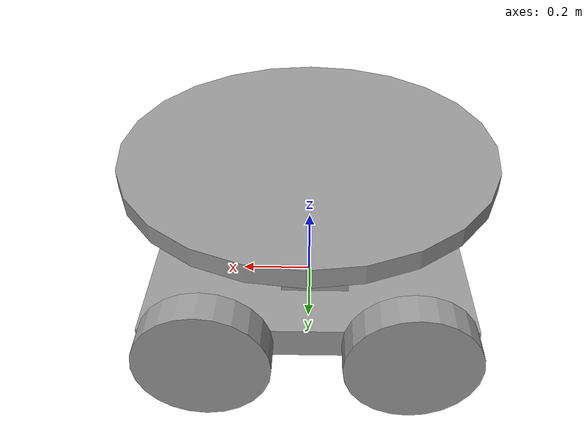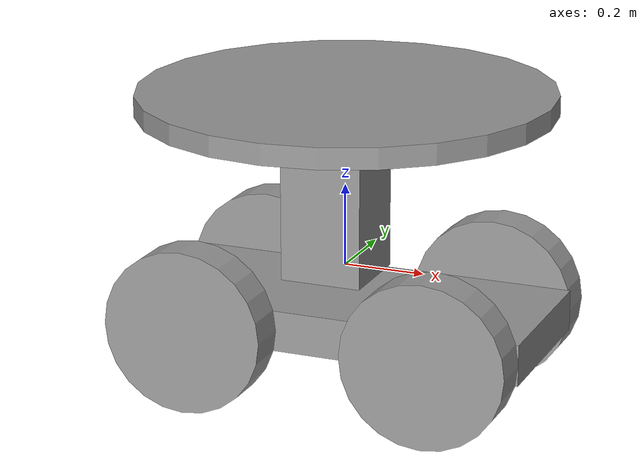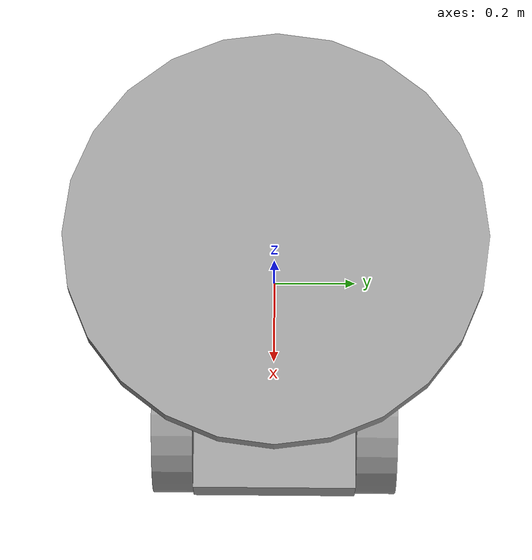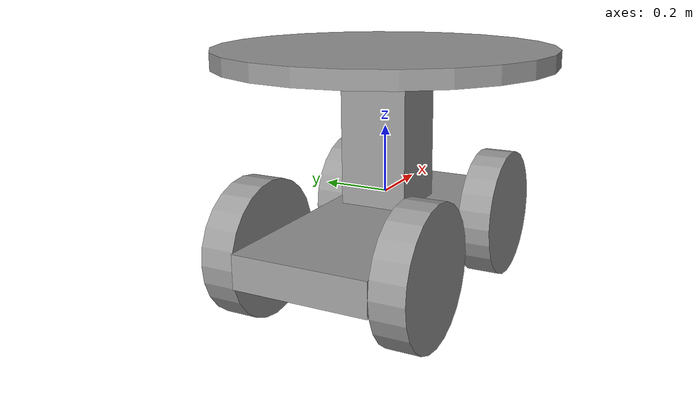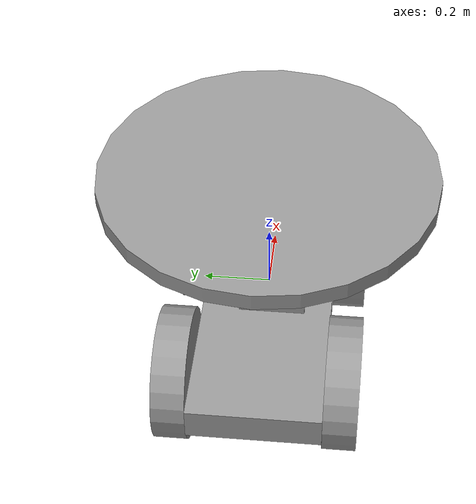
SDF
<?xml version='1.0'?>
<sdf version='1.6'>
  <model name='robot'>
    <link name='link_0'>
      <pose frame=''>0.002857 0.002857 -0.117857 0 -0 0</pose>
      <inertial>
        <mass>1</mass>
        <inertia>
          <ixx>0.166667</ixx>
          <ixy>0</ixy>
          <ixz>0</ixz>
          <iyy>0.166667</iyy>
          <iyz>0</iyz>
          <izz>0.166667</izz>
        </inertia>
        <pose frame=''>0 0 0 0 -0 0</pose>
      </inertial>
      <gravity>1</gravity>
      <self_collide>0</self_collide>
      <kinematic>0</kinematic>
      <visual name='visual'>
        <pose frame=''>0 0 0 0 -0 0</pose>
        <geometry>
          <box>
            <size>1 0.4 0.1</size>
          </box>
        </geometry>
        <material>
          <lighting>1</lighting>
          <script>
            <uri>file://media/materials/scripts/gazebo.material</uri>
            <name>Gazebo/Grey</name>
          </script>
          <ambient>0.3 0.3 0.3 1</ambient>
          <diffuse>0.7 0.7 0.7 1</diffuse>
          <specular>0.01 0.01 0.01 1</specular>
          <emissive>0 0 0 1</emissive>
          <shader type='vertex'>
            <normal_map>__default__</normal_map>
          </shader>
        </material>
        <transparency>0</transparency>
        <cast_shadows>1</cast_shadows>
      </visual>
      <collision name='collision'>
        <laser_retro>0</laser_retro>
        <max_contacts>10</max_contacts>
        <pose frame=''>0 0 0 0 -0 0</pose>
        <geometry>
          <box>
            <size>1 0.4 0.1</size>
          </box>
        </geometry>
        <surface>
          <friction>
            <ode>
              <mu>1</mu>
              <mu2>1</mu2>
              <fdir1>0 0 0</fdir1>
              <slip1>0</slip1>
              <slip2>0</slip2>
            </ode>
            <torsional>
              <coefficient>1</coefficient>
              <patch_radius>0</patch_radius>
              <surface_radius>0</surface_radius>
              <use_patch_radius>1</use_patch_radius>
              <ode>
                <slip>0</slip>
              </ode>
            </torsional>
          </friction>
          <bounce>
            <restitution_coefficient>0</restitution_coefficient>
            <threshold>1e+06</threshold>
          </bounce>
          <contact>
            <collide_without_contact>0</collide_without_contact>
            <collide_without_contact_bitmask>1</collide_without_contact_bitmask>
            <collide_bitmask>1</collide_bitmask>
            <ode>
              <soft_cfm>0</soft_cfm>
              <soft_erp>0.2</soft_erp>
              <kp>1e+13</kp>
              <kd>1</kd>
              <max_vel>0.01</max_vel>
              <min_depth>0</min_depth>
            </ode>
            <bullet>
              <split_impulse>1</split_impulse>
              <split_impulse_penetration_threshold>-0.01</split_impulse_penetration_threshold>
              <soft_cfm>0</soft_cfm>
              <soft_erp>0.2</soft_erp>
              <kp>1e+13</kp>
              <kd>1</kd>
            </bullet>
          </contact>
        </surface>
      </collision>
    </link>
    <link name='link_1'>
      <pose frame=''>-0.297143 -0.247162 -0.117857 1.5707 -0 0</pose>
      <inertial>
        <mass>1</mass>
        <inertia>
          <ixx>0.145833</ixx>
          <ixy>0</ixy>
          <ixz>0</ixz>
          <iyy>0.145833</iyy>
          <iyz>0</iyz>
          <izz>0.125</izz>
        </inertia>
        <pose frame=''>0 0 0 0 -0 0</pose>
      </inertial>
      <gravity>1</gravity>
      <self_collide>0</self_collide>
      <kinematic>0</kinematic>
      <visual name='visual'>
        <pose frame=''>0 0 0 0 -0 0</pose>
        <geometry>
          <cylinder>
            <radius>0.2</radius>
            <length>0.1</length>
          </cylinder>
        </geometry>
        <material>
          <lighting>1</lighting>
          <script>
            <uri>file://media/materials/scripts/gazebo.material</uri>
            <name>Gazebo/Grey</name>
          </script>
          <ambient>0.3 0.3 0.3 1</ambient>
          <diffuse>0.7 0.7 0.7 1</diffuse>
          <specular>0.01 0.01 0.01 1</specular>
          <emissive>0 0 0 1</emissive>
          <shader type='vertex'>
            <normal_map>__default__</normal_map>
          </shader>
        </material>
        <transparency>0</transparency>
        <cast_shadows>1</cast_shadows>
      </visual>
      <collision name='collision'>
        <laser_retro>0</laser_retro>
        <max_contacts>10</max_contacts>
        <pose frame=''>0 0 0 0 -0 0</pose>
        <geometry>
          <cylinder>
            <radius>0.2</radius>
            <length>0.1</length>
          </cylinder>
        </geometry>
        <surface>
          <friction>
            <ode>
              <mu>1</mu>
              <mu2>1</mu2>
              <fdir1>0 0 0</fdir1>
              <slip1>0</slip1>
              <slip2>0</slip2>
            </ode>
            <torsional>
              <coefficient>1</coefficient>
              <patch_radius>0</patch_radius>
              <surface_radius>0</surface_radius>
              <use_patch_radius>1</use_patch_radius>
              <ode>
                <slip>0</slip>
              </ode>
            </torsional>
          </friction>
          <bounce>
            <restitution_coefficient>0</restitution_coefficient>
            <threshold>1e+06</threshold>
          </bounce>
          <contact>
            <collide_without_contact>0</collide_without_contact>
            <collide_without_contact_bitmask>1</collide_without_contact_bitmask>
            <collide_bitmask>1</collide_bitmask>
            <ode>
              <soft_cfm>0</soft_cfm>
              <soft_erp>0.2</soft_erp>
              <kp>1e+13</kp>
              <kd>1</kd>
              <max_vel>0.01</max_vel>
              <min_depth>0</min_depth>
            </ode>
            <bullet>
              <split_impulse>1</split_impulse>
              <split_impulse_penetration_threshold>-0.01</split_impulse_penetration_threshold>
              <soft_cfm>0</soft_cfm>
              <soft_erp>0.2</soft_erp>
              <kp>1e+13</kp>
              <kd>1</kd>
            </bullet>
          </contact>
        </surface>
      </collision>
    </link>
    <link name='link_1_clone'>
      <pose frame=''>-0.297143 0.252876 -0.117857 1.5707 -0 0</pose>
      <inertial>
        <mass>1</mass>
        <inertia>
          <ixx>0.145833</ixx>
          <ixy>0</ixy>
          <ixz>0</ixz>
          <iyy>0.145833</iyy>
          <iyz>0</iyz>
          <izz>0.125</izz>
        </inertia>
        <pose frame=''>0 0 0 0 -0 0</pose>
      </inertial>
      <self_collide>0</self_collide>
      <kinematic>0</kinematic>
      <visual name='visual'>
        <pose frame=''>0 0 0 0 -0 0</pose>
        <geometry>
          <cylinder>
            <radius>0.2</radius>
            <length>0.1</length>
          </cylinder>
        </geometry>
        <material>
          <lighting>1</lighting>
          <script>
            <uri>file://media/materials/scripts/gazebo.material</uri>
            <name>Gazebo/Grey</name>
          </script>
          <ambient>0.3 0.3 0.3 1</ambient>
          <diffuse>0.7 0.7 0.7 1</diffuse>
          <specular>0.01 0.01 0.01 1</specular>
          <emissive>0 0 0 1</emissive>
          <shader type='vertex'>
            <normal_map>__default__</normal_map>
          </shader>
        </material>
        <transparency>0</transparency>
        <cast_shadows>1</cast_shadows>
      </visual>
      <collision name='collision'>
        <laser_retro>0</laser_retro>
        <max_contacts>10</max_contacts>
        <pose frame=''>0 0 0 0 -0 0</pose>
        <geometry>
          <cylinder>
            <radius>0.2</radius>
            <length>0.1</length>
          </cylinder>
        </geometry>
        <surface>
          <friction>
            <ode>
              <mu>1</mu>
              <mu2>1</mu2>
              <fdir1>0 0 0</fdir1>
              <slip1>0</slip1>
              <slip2>0</slip2>
            </ode>
            <torsional>
              <coefficient>1</coefficient>
              <patch_radius>0</patch_radius>
              <surface_radius>0</surface_radius>
              <use_patch_radius>1</use_patch_radius>
              <ode>
                <slip>0</slip>
              </ode>
            </torsional>
          </friction>
          <bounce>
            <restitution_coefficient>0</restitution_coefficient>
            <threshold>1e+06</threshold>
          </bounce>
          <contact>
            <collide_without_contact>0</collide_without_contact>
            <collide_without_contact_bitmask>1</collide_without_contact_bitmask>
            <collide_bitmask>1</collide_bitmask>
            <ode>
              <soft_cfm>0</soft_cfm>
              <soft_erp>0.2</soft_erp>
              <kp>1e+13</kp>
              <kd>1</kd>
              <max_vel>0.01</max_vel>
              <min_depth>0</min_depth>
            </ode>
            <bullet>
              <split_impulse>1</split_impulse>
              <split_impulse_penetration_threshold>-0.01</split_impulse_penetration_threshold>
              <soft_cfm>0</soft_cfm>
              <soft_erp>0.2</soft_erp>
              <kp>1e+13</kp>
              <kd>1</kd>
            </bullet>
          </contact>
        </surface>
      </collision>
    </link>
    <link name='link_1_clone_0'>
      <pose frame=''>0.302857 -0.247162 -0.117857 1.5707 -0 0</pose>
      <inertial>
        <mass>1</mass>
        <inertia>
          <ixx>0.145833</ixx>
          <ixy>0</ixy>
          <ixz>0</ixz>
          <iyy>0.145833</iyy>
          <iyz>0</iyz>
          <izz>0.125</izz>
        </inertia>
        <pose frame=''>0 0 0 0 -0 0</pose>
      </inertial>
      <self_collide>0</self_collide>
      <kinematic>0</kinematic>
      <visual name='visual'>
        <pose frame=''>0 0 0 0 -0 0</pose>
        <geometry>
          <cylinder>
            <radius>0.2</radius>
            <length>0.1</length>
          </cylinder>
        </geometry>
        <material>
          <lighting>1</lighting>
          <script>
            <uri>file://media/materials/scripts/gazebo.material</uri>
            <name>Gazebo/Grey</name>
          </script>
          <ambient>0.3 0.3 0.3 1</ambient>
          <diffuse>0.7 0.7 0.7 1</diffuse>
          <specular>0.01 0.01 0.01 1</specular>
          <emissive>0 0 0 1</emissive>
          <shader type='vertex'>
            <normal_map>__default__</normal_map>
          </shader>
        </material>
        <transparency>0</transparency>
        <cast_shadows>1</cast_shadows>
      </visual>
      <collision name='collision'>
        <laser_retro>0</laser_retro>
        <max_contacts>10</max_contacts>
        <pose frame=''>0 0 0 0 -0 0</pose>
        <geometry>
          <cylinder>
            <radius>0.2</radius>
            <length>0.1</length>
          </cylinder>
        </geometry>
        <surface>
          <friction>
            <ode>
              <mu>1</mu>
              <mu2>1</mu2>
              <fdir1>0 0 0</fdir1>
              <slip1>0</slip1>
              <slip2>0</slip2>
            </ode>
            <torsional>
              <coefficient>1</coefficient>
              <patch_radius>0</patch_radius>
              <surface_radius>0</surface_radius>
              <use_patch_radius>1</use_patch_radius>
              <ode>
                <slip>0</slip>
              </ode>
            </torsional>
          </friction>
          <bounce>
            <restitution_coefficient>0</restitution_coefficient>
            <threshold>1e+06</threshold>
          </bounce>
          <contact>
            <collide_without_contact>0</collide_without_contact>
            <collide_without_contact_bitmask>1</collide_without_contact_bitmask>
            <collide_bitmask>1</collide_bitmask>
            <ode>
              <soft_cfm>0</soft_cfm>
              <soft_erp>0.2</soft_erp>
              <kp>1e+13</kp>
              <kd>1</kd>
              <max_vel>0.01</max_vel>
              <min_depth>0</min_depth>
            </ode>
            <bullet>
              <split_impulse>1</split_impulse>
              <split_impulse_penetration_threshold>-0.01</split_impulse_penetration_threshold>
              <soft_cfm>0</soft_cfm>
              <soft_erp>0.2</soft_erp>
              <kp>1e+13</kp>
              <kd>1</kd>
            </bullet>
          </contact>
        </surface>
      </collision>
    </link>
    <link name='link_1_clone_1'>
      <pose frame=''>0.302857 0.252876 -0.117857 1.5707 -0 0</pose>
      <inertial>
        <mass>1</mass>
        <inertia>
          <ixx>0.145833</ixx>
          <ixy>0</ixy>
          <ixz>0</ixz>
          <iyy>0.145833</iyy>
          <iyz>0</iyz>
          <izz>0.125</izz>
        </inertia>
        <pose frame=''>0 0 0 0 -0 0</pose>
      </inertial>
      <self_collide>0</self_collide>
      <kinematic>0</kinematic>
      <visual name='visual'>
        <pose frame=''>0 0 0 0 -0 0</pose>
        <geometry>
          <cylinder>
            <radius>0.2</radius>
            <length>0.1</length>
          </cylinder>
        </geometry>
        <material>
          <lighting>1</lighting>
          <script>
            <uri>file://media/materials/scripts/gazebo.material</uri>
            <name>Gazebo/Grey</name>
          </script>
          <ambient>0.3 0.3 0.3 1</ambient>
          <diffuse>0.7 0.7 0.7 1</diffuse>
          <specular>0.01 0.01 0.01 1</specular>
          <emissive>0 0 0 1</emissive>
          <shader type='vertex'>
            <normal_map>__default__</normal_map>
          </shader>
        </material>
        <transparency>0</transparency>
        <cast_shadows>1</cast_shadows>
      </visual>
      <collision name='collision'>
        <laser_retro>0</laser_retro>
        <max_contacts>10</max_contacts>
        <pose frame=''>0 0 0 0 -0 0</pose>
        <geometry>
          <cylinder>
            <radius>0.2</radius>
            <length>0.1</length>
          </cylinder>
        </geometry>
        <surface>
          <friction>
            <ode>
              <mu>1</mu>
              <mu2>1</mu2>
              <fdir1>0 0 0</fdir1>
              <slip1>0</slip1>
              <slip2>0</slip2>
            </ode>
            <torsional>
              <coefficient>1</coefficient>
              <patch_radius>0</patch_radius>
              <surface_radius>0</surface_radius>
              <use_patch_radius>1</use_patch_radius>
              <ode>
                <slip>0</slip>
              </ode>
            </torsional>
          </friction>
          <bounce>
            <restitution_coefficient>0</restitution_coefficient>
            <threshold>1e+06</threshold>
          </bounce>
          <contact>
            <collide_without_contact>0</collide_without_contact>
            <collide_without_contact_bitmask>1</collide_without_contact_bitmask>
            <collide_bitmask>1</collide_bitmask>
            <ode>
              <soft_cfm>0</soft_cfm>
              <soft_erp>0.2</soft_erp>
              <kp>1e+13</kp>
              <kd>1</kd>
              <max_vel>0.01</max_vel>
              <min_depth>0</min_depth>
            </ode>
            <bullet>
              <split_impulse>1</split_impulse>
              <split_impulse_penetration_threshold>-0.01</split_impulse_penetration_threshold>
              <soft_cfm>0</soft_cfm>
              <soft_erp>0.2</soft_erp>
              <kp>1e+13</kp>
              <kd>1</kd>
            </bullet>
          </contact>
        </surface>
      </collision>
    </link>
    <link name='link_3'>
      <pose frame=''>-0.017143 -0.017143 0.182143 0 -0 0</pose>
      <inertial>
        <mass>1</mass>
        <inertia>
          <ixx>0.166667</ixx>
          <ixy>0</ixy>
          <ixz>0</ixz>
          <iyy>0.166667</iyy>
          <iyz>0</iyz>
          <izz>0.166667</izz>
        </inertia>
        <pose frame=''>0 0 0 0 -0 0</pose>
      </inertial>
      <gravity>1</gravity>
      <self_collide>0</self_collide>
      <kinematic>0</kinematic>
      <visual name='visual'>
        <pose frame=''>0 0 0 0 -0 0</pose>
        <geometry>
          <box>
            <size>0.2 0.2 0.4</size>
          </box>
        </geometry>
        <material>
          <lighting>1</lighting>
          <script>
            <uri>file://media/materials/scripts/gazebo.material</uri>
            <name>Gazebo/Grey</name>
          </script>
          <ambient>0.3 0.3 0.3 1</ambient>
          <diffuse>0.7 0.7 0.7 1</diffuse>
          <specular>0.01 0.01 0.01 1</specular>
          <emissive>0 0 0 1</emissive>
          <shader type='vertex'>
            <normal_map>__default__</normal_map>
          </shader>
        </material>
        <transparency>0</transparency>
        <cast_shadows>1</cast_shadows>
      </visual>
      <collision name='collision'>
        <laser_retro>0</laser_retro>
        <max_contacts>10</max_contacts>
        <pose frame=''>0 0 0 0 -0 0</pose>
        <geometry>
          <box>
            <size>0.2 0.2 0.4</size>
          </box>
        </geometry>
        <surface>
          <friction>
            <ode>
              <mu>1</mu>
              <mu2>1</mu2>
              <fdir1>0 0 0</fdir1>
              <slip1>0</slip1>
              <slip2>0</slip2>
            </ode>
            <torsional>
              <coefficient>1</coefficient>
              <patch_radius>0</patch_radius>
              <surface_radius>0</surface_radius>
              <use_patch_radius>1</use_patch_radius>
              <ode>
                <slip>0</slip>
              </ode>
            </torsional>
          </friction>
          <bounce>
            <restitution_coefficient>0</restitution_coefficient>
            <threshold>1e+06</threshold>
          </bounce>
          <contact>
            <collide_without_contact>0</collide_without_contact>
            <collide_without_contact_bitmask>1</collide_without_contact_bitmask>
            <collide_bitmask>1</collide_bitmask>
            <ode>
              <soft_cfm>0</soft_cfm>
              <soft_erp>0.2</soft_erp>
              <kp>1e+13</kp>
              <kd>1</kd>
              <max_vel>0.01</max_vel>
              <min_depth>0</min_depth>
            </ode>
            <bullet>
              <split_impulse>1</split_impulse>
              <split_impulse_penetration_threshold>-0.01</split_impulse_penetration_threshold>
              <soft_cfm>0</soft_cfm>
              <soft_erp>0.2</soft_erp>
              <kp>1e+13</kp>
              <kd>1</kd>
            </bullet>
          </contact>
        </surface>
      </collision>
    </link>
    <link name='link_4'>
      <pose frame=''>0.002857 0.002857 0.407143 0 -0 0</pose>
      <inertial>
        <mass>1</mass>
        <inertia>
          <ixx>0.145833</ixx>
          <ixy>0</ixy>
          <ixz>0</ixz>
          <iyy>0.145833</iyy>
          <iyz>0</iyz>
          <izz>0.125</izz>
        </inertia>
        <pose frame=''>0 0 0 0 -0 0</pose>
      </inertial>
      <gravity>1</gravity>
      <self_collide>0</self_collide>
      <kinematic>0</kinematic>
      <visual name='visual'>
        <pose frame=''>0 0 0 0 -0 0</pose>
        <geometry>
          <cylinder>
            <radius>0.5</radius>
            <length>0.05</length>
          </cylinder>
        </geometry>
        <material>
          <lighting>1</lighting>
          <script>
            <uri>file://media/materials/scripts/gazebo.material</uri>
            <name>Gazebo/Grey</name>
          </script>
          <ambient>0.3 0.3 0.3 1</ambient>
          <diffuse>0.7 0.7 0.7 1</diffuse>
          <specular>0.01 0.01 0.01 1</specular>
          <emissive>0 0 0 1</emissive>
          <shader type='vertex'>
            <normal_map>__default__</normal_map>
          </shader>
        </material>
        <transparency>0</transparency>
        <cast_shadows>1</cast_shadows>
      </visual>
      <collision name='collision'>
        <laser_retro>0</laser_retro>
        <max_contacts>10</max_contacts>
        <pose frame=''>0 0 0 0 -0 0</pose>
        <geometry>
          <cylinder>
            <radius>0.5</radius>
            <length>0.05</length>
          </cylinder>
        </geometry>
        <surface>
          <friction>
            <ode>
              <mu>1</mu>
              <mu2>1</mu2>
              <fdir1>0 0 0</fdir1>
              <slip1>0</slip1>
              <slip2>0</slip2>
            </ode>
            <torsional>
              <coefficient>1</coefficient>
              <patch_radius>0</patch_radius>
              <surface_radius>0</surface_radius>
              <use_patch_radius>1</use_patch_radius>
              <ode>
                <slip>0</slip>
              </ode>
            </torsional>
          </friction>
          <bounce>
            <restitution_coefficient>0</restitution_coefficient>
            <threshold>1e+06</threshold>
          </bounce>
          <contact>
            <collide_without_contact>0</collide_without_contact>
            <collide_without_contact_bitmask>1</collide_without_contact_bitmask>
            <collide_bitmask>1</collide_bitmask>
            <ode>
              <soft_cfm>0</soft_cfm>
              <soft_erp>0.2</soft_erp>
              <kp>1e+13</kp>
              <kd>1</kd>
              <max_vel>0.01</max_vel>
              <min_depth>0</min_depth>
            </ode>
            <bullet>
              <split_impulse>1</split_impulse>
              <split_impulse_penetration_threshold>-0.01</split_impulse_penetration_threshold>
              <soft_cfm>0</soft_cfm>
              <soft_erp>0.2</soft_erp>
              <kp>1e+13</kp>
              <kd>1</kd>
            </bullet>
          </contact>
        </surface>
      </collision>
    </link>
    <joint name='link_0_JOINT_2' type='revolute'>
      <parent>link_0</parent>
      <child>link_1</child>
      <pose frame=''>0 0 0 0 -0 0</pose>
      <axis>
        <xyz>0 0 1</xyz>
        <use_parent_model_frame>0</use_parent_model_frame>
        <limit>
          <lower>-1.79769e+308</lower>
          <upper>1.79769e+308</upper>
          <effort>-1</effort>
          <velocity>-1</velocity>
        </limit>
        <dynamics>
          <spring_reference>0</spring_reference>
          <spring_stiffness>0</spring_stiffness>
          <damping>0</damping>
        </dynamics>
      </axis>
      <physics>
        <ode>
          <limit>
            <cfm>0</cfm>
            <erp>0.2</erp>
          </limit>
          <suspension>
            <cfm>0</cfm>
            <erp>0.2</erp>
          </suspension>
        </ode>
      </physics>
    </joint>
    <joint name='link_0_JOINT_3' type='revolute'>
      <parent>link_0</parent>
      <child>link_1_clone</child>
      <pose frame=''>0 0 0 0 -0 0</pose>
      <axis>
        <xyz>0 0 1</xyz>
        <use_parent_model_frame>0</use_parent_model_frame>
        <limit>
          <lower>-1.79769e+308</lower>
          <upper>1.79769e+308</upper>
          <effort>-1</effort>
          <velocity>-1</velocity>
        </limit>
        <dynamics>
          <spring_reference>0</spring_reference>
          <spring_stiffness>0</spring_stiffness>
          <damping>0</damping>
        </dynamics>
      </axis>
      <physics>
        <ode>
          <limit>
            <cfm>0</cfm>
            <erp>0.2</erp>
          </limit>
          <suspension>
            <cfm>0</cfm>
            <erp>0.2</erp>
          </suspension>
        </ode>
      </physics>
    </joint>
    <joint name='link_0_JOINT_4' type='revolute'>
      <parent>link_0</parent>
      <child>link_1_clone_0</child>
      <pose frame=''>0 0 0 0 -0 0</pose>
      <axis>
        <xyz>0 0 1</xyz>
        <use_parent_model_frame>0</use_parent_model_frame>
        <limit>
          <lower>-1.79769e+308</lower>
          <upper>1.79769e+308</upper>
          <effort>-1</effort>
          <velocity>-1</velocity>
        </limit>
        <dynamics>
          <spring_reference>0</spring_reference>
          <spring_stiffness>0</spring_stiffness>
          <damping>0</damping>
        </dynamics>
      </axis>
      <physics>
        <ode>
          <limit>
            <cfm>0</cfm>
            <erp>0.2</erp>
          </limit>
          <suspension>
            <cfm>0</cfm>
            <erp>0.2</erp>
          </suspension>
        </ode>
      </physics>
    </joint>
    <joint name='link_0_JOINT_5' type='revolute'>
      <parent>link_0</parent>
      <child>link_1_clone_1</child>
      <pose frame=''>0 0 0 0 -0 0</pose>
      <axis>
        <xyz>0 0 1</xyz>
        <use_parent_model_frame>0</use_parent_model_frame>
        <limit>
          <lower>-1.79769e+308</lower>
          <upper>1.79769e+308</upper>
          <effort>-1</effort>
          <velocity>-1</velocity>
        </limit>
        <dynamics>
          <spring_reference>0</spring_reference>
          <spring_stiffness>0</spring_stiffness>
          <damping>0</damping>
        </dynamics>
      </axis>
      <physics>
        <ode>
          <limit>
            <cfm>0</cfm>
            <erp>0.2</erp>
          </limit>
          <suspension>
            <cfm>0</cfm>
            <erp>0.2</erp>
          </suspension>
        </ode>
      </physics>
    </joint>
    <joint name='link_0_JOINT_6' type='fixed'>
      <parent>link_0</parent>
      <child>link_3</child>
      <pose frame=''>0 0 0 0 -0 0</pose>
      <physics>
        <ode>
          <limit>
            <cfm>0</cfm>
            <erp>0.2</erp>
          </limit>
          <suspension>
            <cfm>0</cfm>
            <erp>0.2</erp>
          </suspension>
        </ode>
      </physics>
    </joint>
    <joint name='link_3_JOINT_8' type='fixed'>
      <parent>link_3</parent>
      <child>link_4</child>
      <pose frame=''>0 0 0 0 -0 0</pose>
      <physics>
        <ode>
          <limit>
            <cfm>0</cfm>
            <erp>0.2</erp>
          </limit>
          <suspension>
            <cfm>0</cfm>
            <erp>0.2</erp>
          </suspension>
        </ode>
      </physics>
    </joint>
    <static>0</static>
    <allow_auto_disable>1</allow_auto_disable>
  </model>
</sdf>
